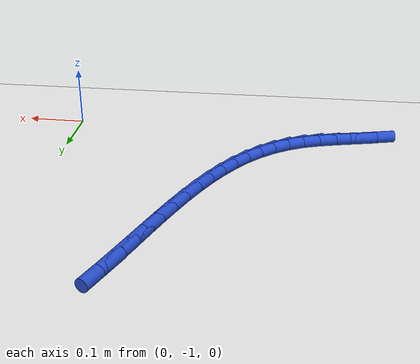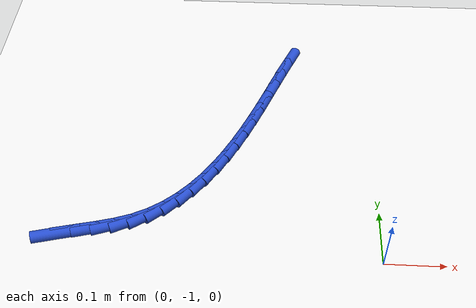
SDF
<sdf version="1.6">
 <world name="default">
  <model name="ground_plane">
   <static>1</static>
   <link name="link">
    <collision name="collision">
     <geometry><plane><normal>0 0 1</normal><size>100 100</size></plane></geometry>
     <surface><friction><ode><mu>100</mu><mu2>50</mu2></ode></friction></surface>
    </collision>
    <visual name="visual">
     <cast_shadows>0</cast_shadows>
     <geometry><plane><normal>0 0 1</normal><size>100 100</size></plane></geometry>
     <material>
      <script><uri>file://media/materials/scripts/gazebo.material</uri><name>Gazebo/WhiteGlow</name></script>
     </material>
    </visual>
   </link>
  </model>
  <model name="line">
   <link name="link_193">
    <pose>-0.5286212275905234 -0.9715382205121733 0.01 0 1.57 0.24730213104172755</pose>
    <collision name="collision">
     <geometry><cylinder><radius>0.01</radius><length>0.08</length></cylinder></geometry>
    </collision>
    <visual name="visual">
     <material>
      <script><name>Gazebo/Blue</name><uri>file://media/materials/scripts/gazebo.material</uri></script>
     </material>
     <geometry><cylinder><radius>0.01</radius><length>0.08</length></cylinder></geometry>
    </visual>
   </link>
   <link name="link_194">
    <pose>-0.49725617431576874 -0.9636194816252028 0.01 0 1.57 0.2305622730064208</pose>
    <collision name="collision">
     <geometry><cylinder><radius>0.01</radius><length>0.08</length></cylinder></geometry>
    </collision>
    <visual name="visual">
     <material>
      <script><name>Gazebo/Blue</name><uri>file://media/materials/scripts/gazebo.material</uri></script>
     </material>
     <geometry><cylinder><radius>0.01</radius><length>0.08</length></cylinder></geometry>
    </visual>
   </link>
   <link name="link_195">
    <pose>-0.4664097245893067 -0.9563786927737918 0.01 0 1.57 0.2601801971736713</pose>
    <collision name="collision">
     <geometry><cylinder><radius>0.01</radius><length>0.08</length></cylinder></geometry>
    </collision>
    <visual name="visual">
     <material>
      <script><name>Gazebo/Blue</name><uri>file://media/materials/scripts/gazebo.material</uri></script>
     </material>
     <geometry><cylinder><radius>0.01</radius><length>0.08</length></cylinder></geometry>
    </visual>
   </link>
   <link name="link_196">
    <pose>-0.4366424145097811 -0.9484542031972393 0.01 0 1.57 0.3406336824051302</pose>
    <collision name="collision">
     <geometry><cylinder><radius>0.01</radius><length>0.08</length></cylinder></geometry>
    </collision>
    <visual name="visual">
     <material>
      <script><name>Gazebo/Blue</name><uri>file://media/materials/scripts/gazebo.material</uri></script>
     </material>
     <geometry><cylinder><radius>0.01</radius><length>0.08</length></cylinder></geometry>
    </visual>
   </link>
   <link name="link_197">
    <pose>-0.4085147799040719 -0.9384843627474708 0.01 0 1.57 0.46568243317227387</pose>
    <collision name="collision">
     <geometry><cylinder><radius>0.01</radius><length>0.08</length></cylinder></geometry>
    </collision>
    <visual name="visual">
     <material>
      <script><name>Gazebo/Blue</name><uri>file://media/materials/scripts/gazebo.material</uri></script>
     </material>
     <geometry><cylinder><radius>0.01</radius><length>0.08</length></cylinder></geometry>
    </visual>
   </link>
   <link name="link_198">
    <pose>-0.382461444987668 -0.9253913602631139 0.01 0 1.57 0.5932632709255115</pose>
    <collision name="collision">
     <geometry><cylinder><radius>0.01</radius><length>0.08</length></cylinder></geometry>
    </collision>
    <visual name="visual">
     <material>
      <script><name>Gazebo/Blue</name><uri>file://media/materials/scripts/gazebo.material</uri></script>
     </material>
     <geometry><cylinder><radius>0.01</radius><length>0.08</length></cylinder></geometry>
    </visual>
   </link>
   <link name="link_199">
    <pose>-0.35843278214703234 -0.9091890197936852 0.01 0 1.57 0.7094729524699388</pose>
    <collision name="collision">
     <geometry><cylinder><radius>0.01</radius><length>0.08</length></cylinder></geometry>
    </collision>
    <visual name="visual">
     <material>
      <script><name>Gazebo/Blue</name><uri>file://media/materials/scripts/gazebo.material</uri></script>
     </material>
     <geometry><cylinder><radius>0.01</radius><length>0.08</length></cylinder></geometry>
    </visual>
   </link>
   <link name="link_200">
    <pose>-0.3362627641459298 -0.890153561768139 0.01 0 1.57 0.8118944861881543</pose>
    <collision name="collision">
     <geometry><cylinder><radius>0.01</radius><length>0.08</length></cylinder></geometry>
    </collision>
    <visual name="visual">
     <material>
      <script><name>Gazebo/Blue</name><uri>file://media/materials/scripts/gazebo.material</uri></script>
     </material>
     <geometry><cylinder><radius>0.01</radius><length>0.08</length></cylinder></geometry>
    </visual>
   </link>
   <link name="link_201">
    <pose>-0.31578536374812544 -0.8685612066154307 0.01 0 1.57 0.8998371122167057</pose>
    <collision name="collision">
     <geometry><cylinder><radius>0.01</radius><length>0.08</length></cylinder></geometry>
    </collision>
    <visual name="visual">
     <material>
      <script><name>Gazebo/Blue</name><uri>file://media/materials/scripts/gazebo.material</uri></script>
     </material>
     <geometry><cylinder><radius>0.01</radius><length>0.08</length></cylinder></geometry>
    </visual>
   </link>
   <link name="link_202">
    <pose>-0.2968345537173856 -0.8446881747645162 0.01 0 1.57 0.9737899968362846</pose>
    <collision name="collision">
     <geometry><cylinder><radius>0.01</radius><length>0.08</length></cylinder></geometry>
    </collision>
    <visual name="visual">
     <material>
      <script><name>Gazebo/Blue</name><uri>file://media/materials/scripts/gazebo.material</uri></script>
     </material>
     <geometry><cylinder><radius>0.01</radius><length>0.08</length></cylinder></geometry>
    </visual>
   </link>
   <link name="link_203">
    <pose>-0.27924430681747514 -0.8188106866443507 0.01 0 1.57 1.034856210514485</pose>
    <collision name="collision">
     <geometry><cylinder><radius>0.01</radius><length>0.08</length></cylinder></geometry>
    </collision>
    <visual name="visual">
     <material>
      <script><name>Gazebo/Blue</name><uri>file://media/materials/scripts/gazebo.material</uri></script>
     </material>
     <geometry><cylinder><radius>0.01</radius><length>0.08</length></cylinder></geometry>
    </visual>
   </link>
   <link name="link_204">
    <pose>-0.262848595812159 -0.7912049626838887 0.01 0 1.57 1.0843355267360673</pose>
    <collision name="collision">
     <geometry><cylinder><radius>0.01</radius><length>0.08</length></cylinder></geometry>
    </collision>
    <visual name="visual">
     <material>
      <script><name>Gazebo/Blue</name><uri>file://media/materials/scripts/gazebo.material</uri></script>
     </material>
     <geometry><cylinder><radius>0.01</radius><length>0.08</length></cylinder></geometry>
    </visual>
   </link>
   <link name="link_205">
    <pose>-0.24748139346520273 -0.762147223312086 0.01 0 1.57 1.1234746419017811</pose>
    <collision name="collision">
     <geometry><cylinder><radius>0.01</radius><length>0.08</length></cylinder></geometry>
    </collision>
    <visual name="visual">
     <material>
      <script><name>Gazebo/Blue</name><uri>file://media/materials/scripts/gazebo.material</uri></script>
     </material>
     <geometry><cylinder><radius>0.01</radius><length>0.08</length></cylinder></geometry>
    </visual>
   </link>
   <link name="link_206">
    <pose>-0.23297667254037124 -0.7319136889578968 0.01 0 1.57 1.1533412609177673</pose>
    <collision name="collision">
     <geometry><cylinder><radius>0.01</radius><length>0.08</length></cylinder></geometry>
    </collision>
    <visual name="visual">
     <material>
      <script><name>Gazebo/Blue</name><uri>file://media/materials/scripts/gazebo.material</uri></script>
     </material>
     <geometry><cylinder><radius>0.01</radius><length>0.08</length></cylinder></geometry>
    </visual>
   </link>
   <link name="link_207">
    <pose>-0.2191684058014304 -0.7007805800502777 0.01 0 1.57 1.1747721277105179</pose>
    <collision name="collision">
     <geometry><cylinder><radius>0.01</radius><length>0.08</length></cylinder></geometry>
    </collision>
    <visual name="visual">
     <material>
      <script><name>Gazebo/Blue</name><uri>file://media/materials/scripts/gazebo.material</uri></script>
     </material>
     <geometry><cylinder><radius>0.01</radius><length>0.08</length></cylinder></geometry>
    </visual>
   </link>
   <link name="link_208">
    <pose>-0.2058905660121452 -0.6690241170181831 0.01 0 1.57 1.188358013009438</pose>
    <collision name="collision">
     <geometry><cylinder><radius>0.01</radius><length>0.08</length></cylinder></geometry>
    </collision>
    <visual name="visual">
     <material>
      <script><name>Gazebo/Blue</name><uri>file://media/materials/scripts/gazebo.material</uri></script>
     </material>
     <geometry><cylinder><radius>0.01</radius><length>0.08</length></cylinder></geometry>
    </visual>
   </link>
   <link name="link_209">
    <pose>-0.19297712593628086 -0.6369205202905684 0.01 0 1.57 1.1944427483751112</pose>
    <collision name="collision">
     <geometry><cylinder><radius>0.01</radius><length>0.08</length></cylinder></geometry>
    </collision>
    <visual name="visual">
     <material>
      <script><name>Gazebo/Blue</name><uri>file://media/materials/scripts/gazebo.material</uri></script>
     </material>
     <geometry><cylinder><radius>0.01</radius><length>0.08</length></cylinder></geometry>
    </visual>
   </link>
   <link name="link_210">
    <pose>-0.1802620583376024 -0.6047460102963883 0.01 0 1.57 1.1931234270153155</pose>
    <collision name="collision">
     <geometry><cylinder><radius>0.01</radius><length>0.08</length></cylinder></geometry>
    </collision>
    <visual name="visual">
     <material>
      <script><name>Gazebo/Blue</name><uri>file://media/materials/scripts/gazebo.material</uri></script>
     </material>
     <geometry><cylinder><radius>0.01</radius><length>0.08</length></cylinder></geometry>
    </visual>
   </link>
   <link name="link_211">
    <pose>-0.16757933597987573 -0.5727768074645989 0.01 0 1.57 1.1842449906964228</pose>
    <collision name="collision">
     <geometry><cylinder><radius>0.01</radius><length>0.08</length></cylinder></geometry>
    </collision>
    <visual name="visual">
     <material>
      <script><name>Gazebo/Blue</name><uri>file://media/materials/scripts/gazebo.material</uri></script>
     </material>
     <geometry><cylinder><radius>0.01</radius><length>0.08</length></cylinder></geometry>
    </visual>
   </link>
   <link name="link_212">
    <pose>-0.15476293162686583 -0.5412891322241551 0.01 0 1.57 1.1674536892535639</pose>
    <collision name="collision">
     <geometry><cylinder><radius>0.01</radius><length>0.08</length></cylinder></geometry>
    </collision>
    <visual name="visual">
     <material>
      <script><name>Gazebo/Blue</name><uri>file://media/materials/scripts/gazebo.material</uri></script>
     </material>
     <geometry><cylinder><radius>0.01</radius><length>0.08</length></cylinder></geometry>
    </visual>
   </link>
  </model>
 </world>
</sdf>
